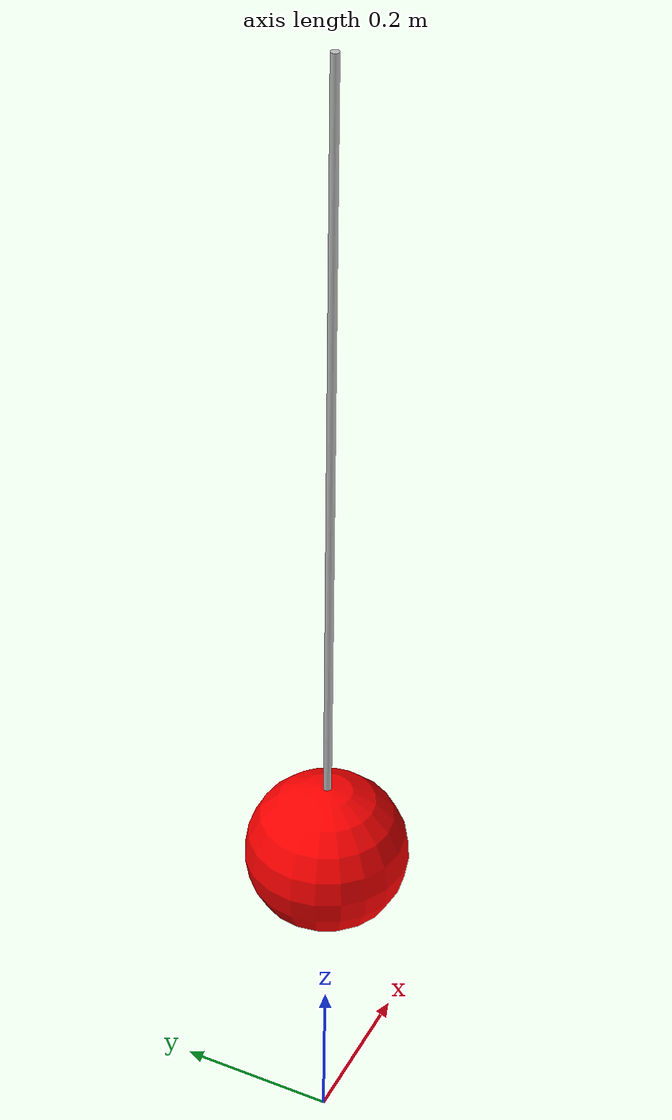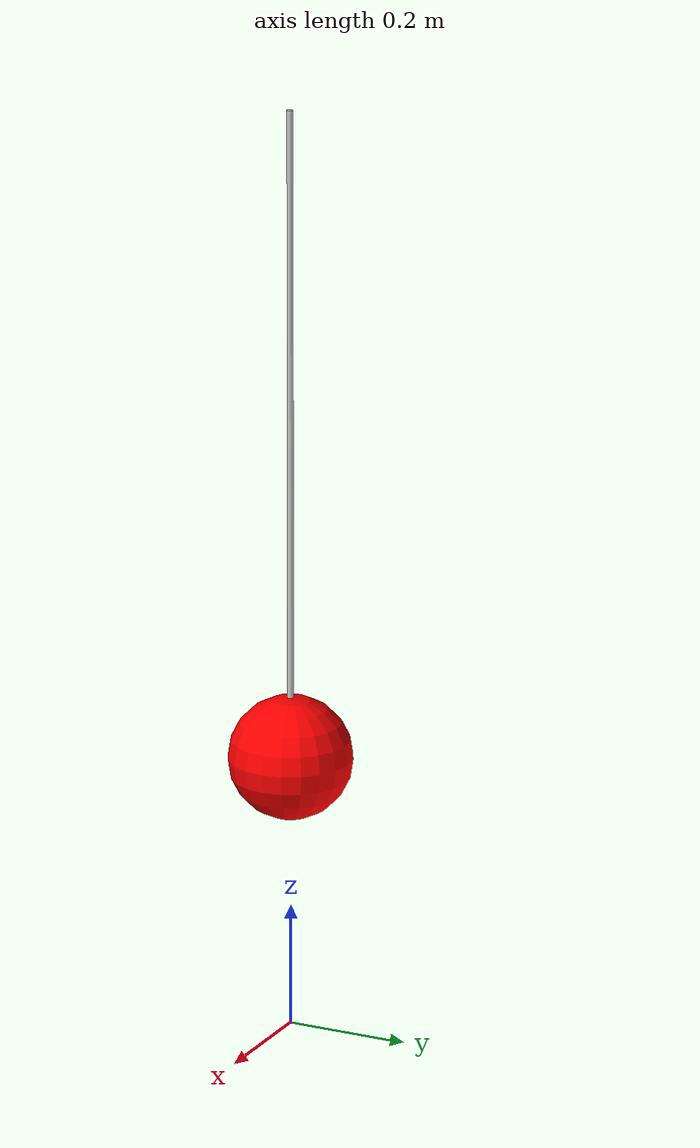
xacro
<?xml version='1.0' encoding='utf-8'?>
<robot xmlns:xacro="http://www.ros.org/wiki/xacro" name="crane">
  <xacro:include filename="$(find crane_description)/urdf/pendulum.xacro" />
  <xacro:pendulum prefix="" length="1.05" />
  <link name="world"/>
  <joint name="tip" type="fixed">
    <origin xyz="0 0 1.5" rpy="0 ${radians(180)} 0"/>
    <parent link="world"/>
    <child link="base_link"/>
  </joint>
</robot>

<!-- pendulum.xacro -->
<robot xmlns:xacro="http://www.ros.org/wiki/xacro">
  <xacro:macro name="pendulum" params="prefix length">

    <material name="white">
      <color rgba="1 1 1 1"/>
    </material>
    <material name="gray">
      <color rgba="0.5 0.5 0.5 1"/>
    </material>
    <material name="lessgray">
      <color rgba="0.75 0.75 0.75 1"/>
    </material>
    <material name="red">
      <color rgba="1 0 0 1"/>
    </material>

    <link name="${prefix}base_link"/>
    <link name="${prefix}frame1"/>
    <link name="${prefix}frame2"/>

    <joint name="phix_joint" type="continuous">
      <parent link="${prefix}base_link"/>
      <child link="${prefix}frame1"/>
      <axis xyz="1 0 0" />
    </joint>

    <joint name="phiy_joint" type="continuous">
      <parent link="${prefix}frame1"/>
      <child link="${prefix}frame2"/>
      <axis xyz="0 1 0" />
    </joint>

    <joint name="${prefix}frame2_wire_joint" type="fixed">
      <parent link="${prefix}frame2"/>
      <child link="${prefix}wire"/>
    </joint>

    <link name="${prefix}wire">
      <visual>
        <origin xyz="0.0 0.0 ${length/2}" rpy="0 0 0" />
        <geometry>
          <cylinder radius="0.005" length="${length}"/>
        </geometry>
        <material name="lessgray"/>
      </visual>
    </link>

    <joint name="${prefix}wire_payload_joint" type="fixed">
      <parent link="${prefix}wire"/>
      <child link="${prefix}payload"/>
    </joint>

    <link name="${prefix}payload">
      <visual>
        <origin xyz="0 0 ${length}" rpy="0 0 0"/>
        <geometry>
          <sphere radius="0.1"/>
        </geometry>
        <material name="red"/>
      </visual>
    </link>

  </xacro:macro>
</robot>
